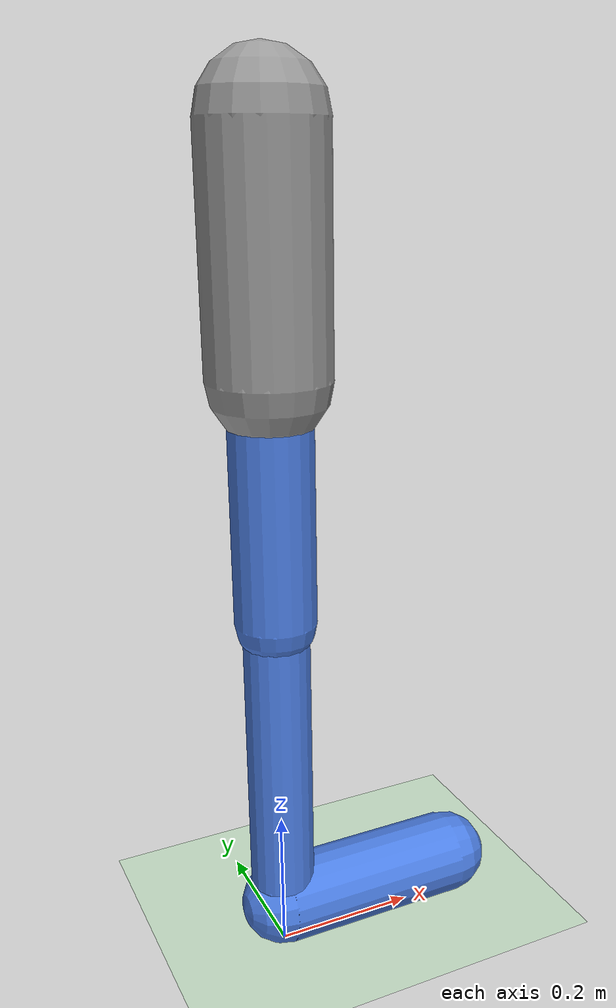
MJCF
<?xml version="1.0" encoding="utf-8"?>
<mujoco model="pilot_p1">
  <compiler angle="degree" inertiafromgeom="true" />
  <option integrator="RK4" timestep="0.002" />
  <visual>
    <global offwidth="1920" offheight="1080" />
  </visual>
  <default>
    <joint armature="0.01" damping="0.1" limited="true" />
    <geom conaffinity="0" condim="3" contype="1" density="1000" friction="0.9 0.1 0.1" rgba="0.8 0.6 0.4 1" />
  </default>
  <asset>
    <texture type="skybox" builtin="gradient" rgb1=".4 .5 .6" rgb2="0 0 0" width="100" height="100" />
    <texture builtin="checker" height="100" name="texplane" rgb1="0 0 0" rgb2="0.8 0.8 0.8" type="2d" width="100" />
    <material name="MatPlane" reflectance="0.5" shininess="1" specular="1" texrepeat="60 60" texture="texplane" />
  </asset>
  <worldbody>
    <light cutoff="100" diffuse="1 1 1" dir="0 0 -1.3" directional="true" exponent="1" pos="0 0 1.3" specular=".1 .1 .1" />
    <geom conaffinity="1" condim="3" name="floor" pos="0 0 0" rgba="0.8 0.9 0.8 1" size="100 100 100" type="plane" material="MatPlane" />
    <body name="torso" pos="0.0000 0.0000 0.9750">
      <camera name="track" mode="trackcom" pos="0 -3 -0.25" xyaxes="1 0 0 0 0 1" />
      <joint armature="0" axis="1 0 0" damping="0" limited="false" name="rootx" pos="0 0 0" stiffness="0" type="slide" />
      <joint armature="0" axis="0 0 1" damping="0" limited="false" name="rootz" pos="0 0 0" ref="0.9750" stiffness="0" type="slide" />
      <joint armature="0" axis="0 1 0" damping="0" limited="false" name="rooty" pos="0 0 0" stiffness="0" type="hinge" />
      <geom name="torso_geom" type="capsule" size="0.0800" rgba="0.6 0.6 0.6 1" friction="0.9" fromto="0.0000 0.0000 -0.1500 0.0000 0.0000 0.1500" />
      <body name="thigh_l" pos="0.0000 0.0000 -0.1500">
        <joint axis="0 -1 0" name="thigh_l_joint" pos="0 0 0" range="-60 60" type="hinge" />
        <geom name="thigh_l_geom" type="capsule" size="0.0550" friction="0.9" rgba="0.3 0.5 0.9 1" fromto="0.0000 0.0000 0.0000 0.0000 0.0000 -0.3200" />
        <body name="shin_l" pos="0.0000 0.0000 -0.3200">
          <joint axis="0 -1 0" name="shin_l_joint" pos="0 0 0" range="-140 0" type="hinge" />
          <geom name="shin_l_geom" type="capsule" size="0.0450" friction="0.9" rgba="0.3 0.5 0.9 1" fromto="0.0000 0.0000 0.0000 0.0000 0.0000 -0.4000" />
          <body name="foot_l" pos="0.0000 0.0000 -0.4400">
            <joint axis="0 -1 0" name="foot_l_joint" pos="0 0 0" range="-45 45" type="hinge" />
            <geom name="foot_l_geom" type="capsule" size="0.0600" friction="1.9" rgba="0.3 0.5 0.9 1" fromto="0.0000 0.0000 0.0000 0.2700 0.0000 0.0000" />
          </body>
        </body>
      </body>
      <body name="thigh_r" pos="0.0000 0.0000 -0.1500">
        <joint axis="0 -1 0" name="thigh_r_joint" pos="0 0 0" range="-60 60" type="hinge" />
        <geom name="thigh_r_geom" type="capsule" size="0.0550" friction="0.9" rgba="0.9 0.3 0.3 1" fromto="0.0000 0.0000 0.0000 0.0000 0.0000 -0.3200" />
        <body name="shin_r" pos="0.0000 0.0000 -0.3200">
          <joint axis="0 -1 0" name="shin_r_joint" pos="0 0 0" range="-140 0" type="hinge" />
          <geom name="shin_r_geom" type="capsule" size="0.0450" friction="0.9" rgba="0.9 0.3 0.3 1" fromto="0.0000 0.0000 0.0000 0.0000 0.0000 -0.4000" />
          <body name="foot_r" pos="0.0000 0.0000 -0.4400">
            <joint axis="0 -1 0" name="foot_r_joint" pos="0 0 0" range="-45 45" type="hinge" />
            <geom name="foot_r_geom" type="capsule" size="0.0600" friction="1.9" rgba="0.9 0.3 0.3 1" fromto="0.0000 0.0000 0.0000 0.2700 0.0000 0.0000" />
          </body>
        </body>
      </body>
    </body>
  </worldbody>
  <actuator>
    <motor ctrllimited="true" ctrlrange="-1.0 1.0" gear="124.1" joint="thigh_l_joint" />
    <motor ctrllimited="true" ctrlrange="-1.0 1.0" gear="124.1" joint="shin_l_joint" />
    <motor ctrllimited="true" ctrlrange="-1.0 1.0" gear="124.1" joint="foot_l_joint" />
    <motor ctrllimited="true" ctrlrange="-1.0 1.0" gear="124.1" joint="thigh_r_joint" />
    <motor ctrllimited="true" ctrlrange="-1.0 1.0" gear="124.1" joint="shin_r_joint" />
    <motor ctrllimited="true" ctrlrange="-1.0 1.0" gear="124.1" joint="foot_r_joint" />
  </actuator>
</mujoco>
